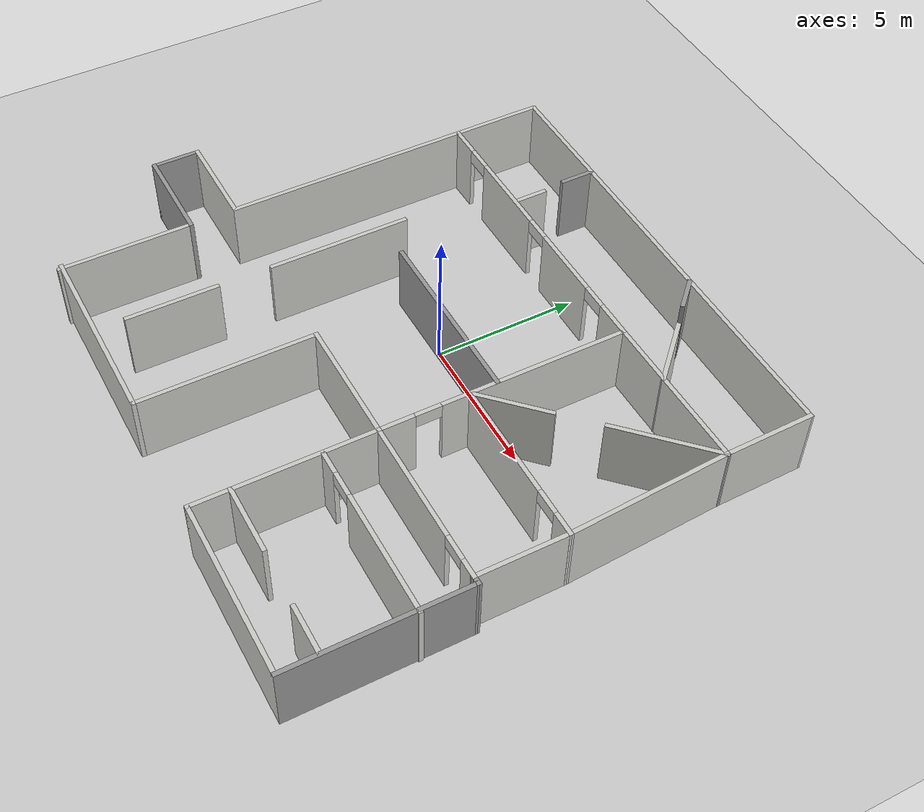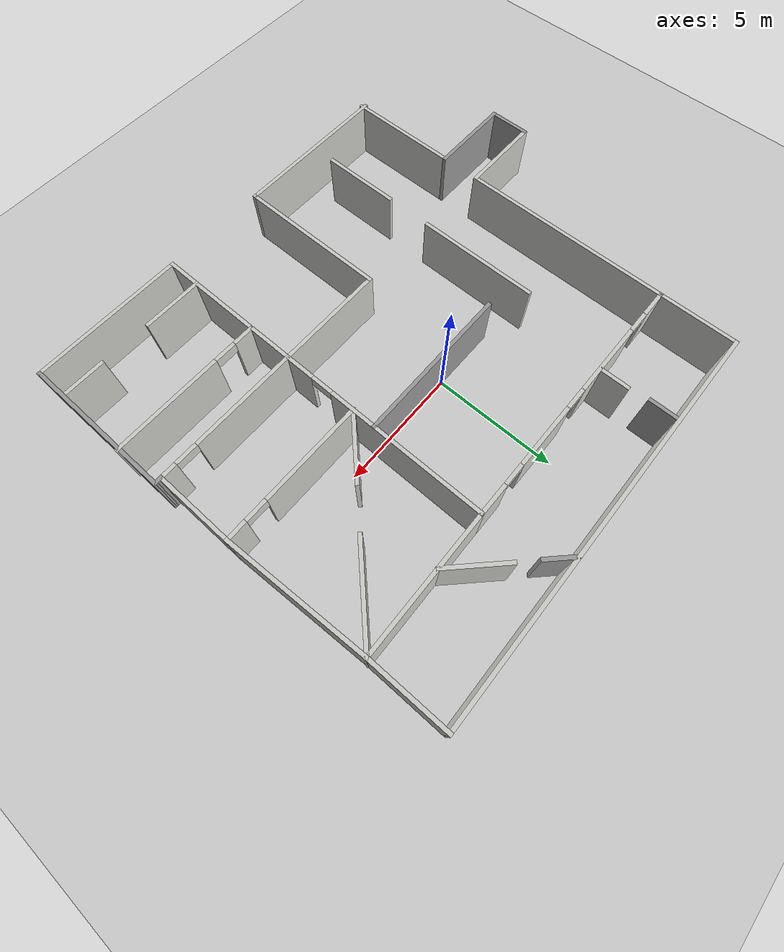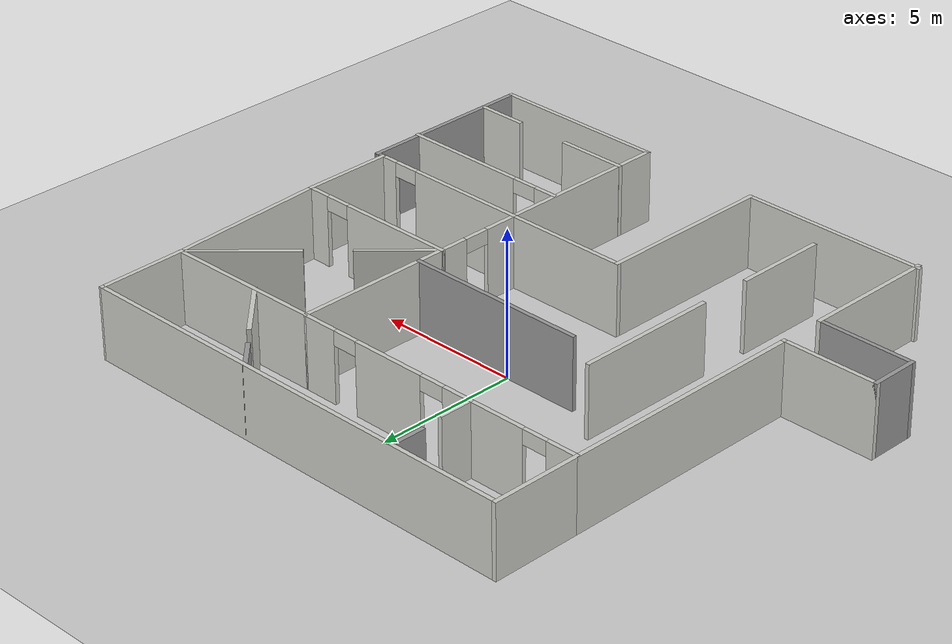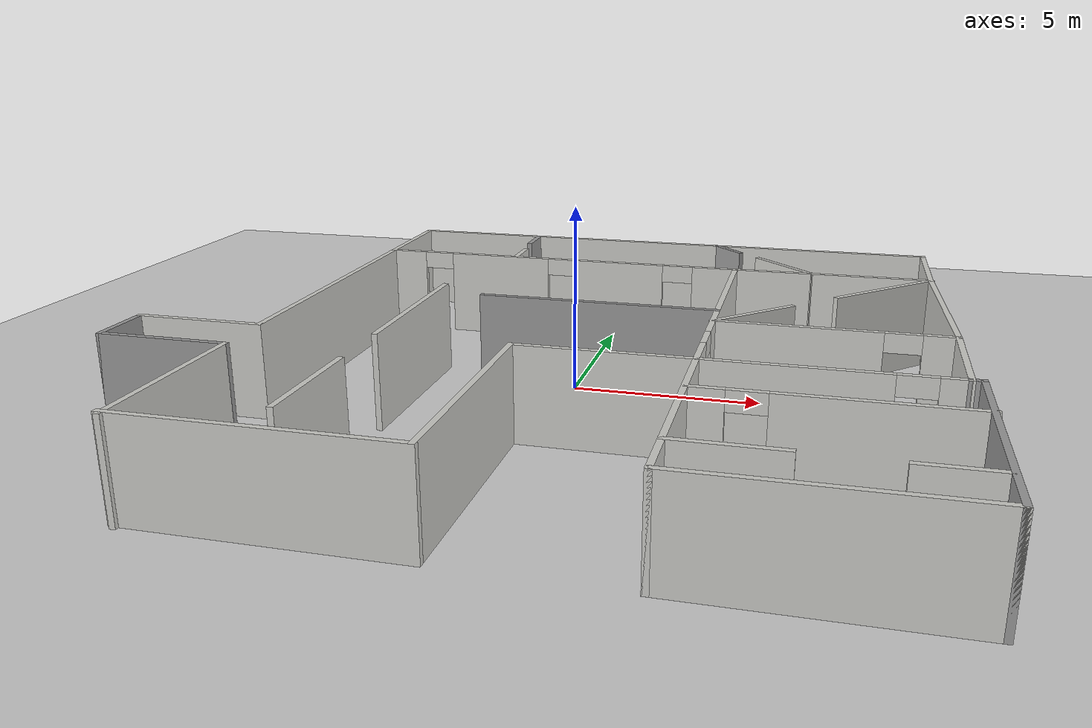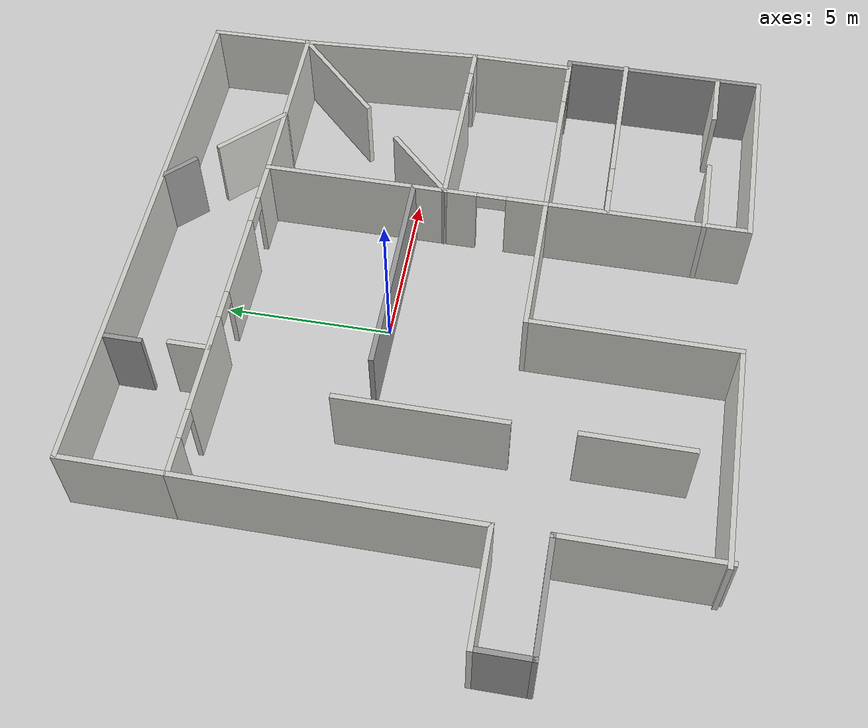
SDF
<sdf version="1.7">
 <world name="default">
  <scene><ambient>0.4 0.4 0.4 1</ambient><background>0.7 0.7 0.7 1</background><shadows>1</shadows></scene>
  <light name="sun" type="directional">
   <pose>0 0 10 0 -0 0</pose>
   <diffuse>0.8 0.8 0.8 1</diffuse>
   <specular>0.2 0.2 0.2 1</specular>
   <attenuation>
    <range>1000</range>
    <constant>0.9</constant>
    <linear>0.01</linear>
    <quadratic>0.001</quadratic>
   </attenuation>
   <direction>-0.5 0.1 -0.9</direction>
   <spot><inner_angle>0</inner_angle><outer_angle>0</outer_angle><falloff>0</falloff></spot>
  </light>
  <model name="ground_plane">
   <static>1</static>
   <link name="link">
    <collision name="collision">
     <geometry><plane><normal>0 0 1</normal><size>100 100</size></plane></geometry>
     <surface>
      <contact><collide_bitmask>65535</collide_bitmask></contact>
      <friction><ode><mu>100</mu><mu2>50</mu2></ode></friction>
     </surface>
    </collision>
    <visual name="visual">
     <cast_shadows>0</cast_shadows>
     <geometry><plane><normal>0 0 1</normal><size>100 100</size></plane></geometry>
     <material>
      <script><uri>file://media/materials/scripts/gazebo.material</uri><name>Gazebo/Grey</name></script>
     </material>
    </visual>
   </link>
  </model>
  <physics type="ode">
   <real_time_update_rate>1000</real_time_update_rate>
   <max_step_size>0.001</max_step_size>
   <real_time_factor>1</real_time_factor>
   <ode>
    <solver>
     <type>quick</type>
     <iters>150</iters>
     <precon_iters>0</precon_iters>
     <sor>1.4</sor>
     <use_dynamic_moi_rescaling>1</use_dynamic_moi_rescaling>
    </solver>
    <constraints>
     <cfm>1e-05</cfm>
     <erp>0.2</erp>
     <contact_max_correcting_vel>2000</contact_max_correcting_vel>
     <contact_surface_layer>0.01</contact_surface_layer>
    </constraints>
   </ode>
  </physics>
  <gravity>0 0 -9.8</gravity>
  <magnetic_field>6e-06 2.3e-05 -4.2e-05</magnetic_field>
  <atmosphere type="adiabatic"/>
  <spherical_coordinates>
   <surface_model>EARTH_WGS84</surface_model>
   <latitude_deg>0</latitude_deg>
   <longitude_deg>0</longitude_deg>
   <elevation>0</elevation>
   <heading_deg>0</heading_deg>
  </spherical_coordinates>
  <model name="simworld1">
   <pose>-0.23853 -1.35626 0 0 -0 0</pose>
   <link name="Wall_11">
    <pose>4.02518 1.54652 0 0 -0 -1.5708</pose>
    <visual name="Wall_11_Visual_0">
     <pose>-1.09189 0 1.25 0 -0 0</pose>
     <geometry><box><size>6.56622 0.15 2.5</size></box></geometry>
     <material>
      <script><uri>file://media/materials/scripts/gazebo.material</uri><name>Gazebo/CeilingTiled</name></script>
      <ambient>1 1 1 1</ambient>
     </material>
     <meta><layer>0</layer></meta>
    </visual>
    <collision name="Wall_11_Collision_0">
     <geometry><box><size>6.56622 0.15 2.5</size></box></geometry>
     <pose>-1.09189 0 1.25 0 -0 0</pose>
    </collision>
    <visual name="Wall_11_Visual_1">
     <pose>3.73311 0 1.25 0 -0 0</pose>
     <geometry><box><size>1.28378 0.15 2.5</size></box></geometry>
     <material>
      <script><uri>file://media/materials/scripts/gazebo.material</uri><name>Gazebo/CeilingTiled</name></script>
      <ambient>1 1 1 1</ambient>
     </material>
     <meta><layer>0</layer></meta>
    </visual>
    <collision name="Wall_11_Collision_1">
     <geometry><box><size>1.28378 0.15 2.5</size></box></geometry>
     <pose>3.73311 0 1.25 0 -0 0</pose>
    </collision>
    <visual name="Wall_11_Visual_2">
     <pose>2.64122 0 2.25 0 -0 0</pose>
     <geometry><box><size>0.9 0.15 0.5</size></box></geometry>
     <material>
      <script><uri>file://media/materials/scripts/gazebo.material</uri><name>Gazebo/CeilingTiled</name></script>
      <ambient>1 1 1 1</ambient>
     </material>
     <meta><layer>0</layer></meta>
    </visual>
    <collision name="Wall_11_Collision_2">
     <geometry><box><size>0.9 0.15 0.5</size></box></geometry>
     <pose>2.64122 0 2.25 0 -0 0</pose>
    </collision>
   </link>
   <link name="Wall_13">
    <collision name="Wall_13_Collision">
     <geometry><box><size>4.5 0.15 2.5</size></box></geometry>
     <pose>0 0 1.25 0 -0 0</pose>
    </collision>
    <visual name="Wall_13_Visual">
     <pose>0 0 1.25 0 -0 0</pose>
     <geometry><box><size>4.5 0.15 2.5</size></box></geometry>
     <material>
      <script><uri>file://media/materials/scripts/gazebo.material</uri><name>Gazebo/CeilingTiled</name></script>
      <ambient>1 1 1 1</ambient>
     </material>
     <meta><layer>0</layer></meta>
    </visual>
    <pose>1.85018 -2.75348 0 0 -0 3.14159</pose>
   </link>
   <link name="Wall_14">
    <collision name="Wall_14_Collision">
     <geometry><box><size>6.25 0.15 2.5</size></box></geometry>
     <pose>0 0 1.25 0 -0 0</pose>
    </collision>
    <visual name="Wall_14_Visual">
     <pose>0 0 1.25 0 -0 0</pose>
     <geometry><box><size>6.25 0.15 2.5</size></box></geometry>
     <material>
      <script><uri>file://media/materials/scripts/gazebo.material</uri><name>Gazebo/CeilingTiled</name></script>
      <ambient>1 1 1 1</ambient>
     </material>
     <meta><layer>0</layer></meta>
    </visual>
    <pose>-0.324822 -5.80348 0 0 -0 -1.5708</pose>
   </link>
   <link name="Wall_15">
    <collision name="Wall_15_Collision">
     <geometry><box><size>6.75 0.15 2.5</size></box></geometry>
     <pose>0 0 1.25 0 -0 0</pose>
    </collision>
    <visual name="Wall_15_Visual">
     <pose>0 0 1.25 0 -0 0</pose>
     <geometry><box><size>6.75 0.15 2.5</size></box></geometry>
     <material>
      <script><uri>file://media/materials/scripts/gazebo.material</uri><name>Gazebo/CeilingTiled</name></script>
      <ambient>1 1 1 1</ambient>
     </material>
     <meta><layer>0</layer></meta>
    </visual>
    <pose>-3.62482 -8.85348 0 0 -0 3.14159</pose>
   </link>
   <link name="Wall_18">
    <collision name="Wall_18_Collision">
     <geometry><box><size>5 0.15 2.5</size></box></geometry>
     <pose>0 0 1.25 0 -0 0</pose>
    </collision>
    <visual name="Wall_18_Visual">
     <pose>0 0 1.25 0 -0 0</pose>
     <geometry><box><size>5 0.15 2.5</size></box></geometry>
     <material>
      <script><uri>file://media/materials/scripts/gazebo.material</uri><name>Gazebo/CeilingTiled</name></script>
      <ambient>1 1 1 1</ambient>
     </material>
     <meta><layer>0</layer></meta>
    </visual>
    <pose>-3.72482 -0.32848 0 0 -0 1.5708</pose>
   </link>
   <link name="Wall_21">
    <collision name="Wall_21_Collision">
     <geometry><box><size>6.5 0.15 2.5</size></box></geometry>
     <pose>0 0 1.25 0 -0 0</pose>
    </collision>
    <visual name="Wall_21_Visual">
     <pose>0 0 1.25 0 -0 0</pose>
     <geometry><box><size>6.5 0.15 2.5</size></box></geometry>
     <material>
      <script><uri>file://media/materials/scripts/gazebo.material</uri><name>Gazebo/Grey</name></script>
      <ambient>1 1 1 1</ambient>
     </material>
     <meta><layer>0</layer></meta>
    </visual>
    <pose>0.835818 1.29652 0 0 -0 0</pose>
   </link>
   <link name="Wall_23">
    <pose>6.94794 0.34391 0 0 -0 0</pose>
    <visual name="Wall_23_Visual_0">
     <pose>-0.890072 0 1.25 0 -0 0</pose>
     <geometry><box><size>4.21986 0.15 2.5</size></box></geometry>
     <material>
      <script><uri>file://media/materials/scripts/gazebo.material</uri><name>Gazebo/CeilingTiled</name></script>
      <ambient>1 1 1 1</ambient>
     </material>
     <meta><layer>0</layer></meta>
    </visual>
    <collision name="Wall_23_Collision_0">
     <geometry><box><size>4.21986 0.15 2.5</size></box></geometry>
     <pose>-0.890072 0 1.25 0 -0 0</pose>
    </collision>
    <visual name="Wall_23_Visual_1">
     <pose>2.55993 0 1.25 0 -0 0</pose>
     <geometry><box><size>0.880144 0.15 2.5</size></box></geometry>
     <material>
      <script><uri>file://media/materials/scripts/gazebo.material</uri><name>Gazebo/CeilingTiled</name></script>
      <ambient>1 1 1 1</ambient>
     </material>
     <meta><layer>0</layer></meta>
    </visual>
    <collision name="Wall_23_Collision_1">
     <geometry><box><size>0.880144 0.15 2.5</size></box></geometry>
     <pose>2.55993 0 1.25 0 -0 0</pose>
    </collision>
    <visual name="Wall_23_Visual_2">
     <pose>1.66986 0 2.25 0 -0 0</pose>
     <geometry><box><size>0.9 0.15 0.5</size></box></geometry>
     <material>
      <script><uri>file://media/materials/scripts/gazebo.material</uri><name>Gazebo/CeilingTiled</name></script>
      <ambient>1 1 1 1</ambient>
     </material>
     <meta><layer>0</layer></meta>
    </visual>
    <collision name="Wall_23_Collision_2">
     <geometry><box><size>0.9 0.15 0.5</size></box></geometry>
     <pose>1.66986 0 2.25 0 -0 0</pose>
    </collision>
   </link>
   <link name="Wall_24">
    <collision name="Wall_24_Collision">
     <geometry><box><size>3.25 0.15 2.5</size></box></geometry>
     <pose>0 0 1.25 0 -0 0</pose>
    </collision>
    <visual name="Wall_24_Visual">
     <pose>0 0 1.25 0 -0 0</pose>
     <geometry><box><size>3.25 0.15 2.5</size></box></geometry>
     <material>
      <script><uri>file://media/materials/scripts/gazebo.material</uri><name>Gazebo/CeilingTiled</name></script>
      <ambient>1 1 1 1</ambient>
     </material>
     <meta><layer>0</layer></meta>
    </visual>
    <pose>9.87294 -1.20609 0 0 -0 -1.5708</pose>
   </link>
   <link name="Wall_25">
    <pose>6.94906 -2.75479 0 0 -0 3.14115</pose>
    <visual name="Wall_25_Visual_0">
     <pose>-2.64457 0 1.25 0 -0 0</pose>
     <geometry><box><size>0.708624 0.15 2.5</size></box></geometry>
     <material>
      <script><uri>file://media/materials/scripts/gazebo.material</uri><name>Gazebo/CeilingTiled</name></script>
      <ambient>1 1 1 1</ambient>
     </material>
     <meta><layer>0</layer></meta>
    </visual>
    <collision name="Wall_25_Collision_0">
     <geometry><box><size>0.708624 0.15 2.5</size></box></geometry>
     <pose>-2.64457 0 1.25 0 -0 0</pose>
    </collision>
    <visual name="Wall_25_Visual_1">
     <pose>0.804312 0 1.25 0 -0 0</pose>
     <geometry><box><size>4.38914 0.15 2.5</size></box></geometry>
     <material>
      <script><uri>file://media/materials/scripts/gazebo.material</uri><name>Gazebo/CeilingTiled</name></script>
      <ambient>1 1 1 1</ambient>
     </material>
     <meta><layer>0</layer></meta>
    </visual>
    <collision name="Wall_25_Collision_1">
     <geometry><box><size>4.38914 0.15 2.5</size></box></geometry>
     <pose>0.804312 0 1.25 0 -0 0</pose>
    </collision>
    <visual name="Wall_25_Visual_2">
     <pose>-1.84026 0 2.25 0 -0 0</pose>
     <geometry><box><size>0.9 0.15 0.5</size></box></geometry>
     <material>
      <script><uri>file://media/materials/scripts/gazebo.material</uri><name>Gazebo/CeilingTiled</name></script>
      <ambient>1 1 1 1</ambient>
     </material>
     <meta><layer>0</layer></meta>
    </visual>
    <collision name="Wall_25_Collision_2">
     <geometry><box><size>0.9 0.15 0.5</size></box></geometry>
     <pose>-1.84026 0 2.25 0 -0 0</pose>
    </collision>
   </link>
   <link name="Wall_26">
    <collision name="Wall_26_Collision">
     <geometry><box><size>6.25 0.15 2.5</size></box></geometry>
     <pose>0 0 1.25 0 -0 0</pose>
    </collision>
    <visual name="Wall_26_Visual">
     <pose>0 0 1.25 0 -0 0</pose>
     <geometry><box><size>6.25 0.15 2.5</size></box></geometry>
     <material>
      <script><uri>file://media/materials/scripts/gazebo.material</uri><name>Gazebo/CeilingTiled</name></script>
      <ambient>1 1 1 1</ambient>
     </material>
     <meta><layer>0</layer></meta>
    </visual>
    <pose>4.02518 -5.80348 0 0 -0 -1.5708</pose>
   </link>
   <link name="Wall_27">
    <collision name="Wall_27_Collision">
     <geometry><box><size>6.25 0.15 2.5</size></box></geometry>
     <pose>0 0 1.25 0 -0 0</pose>
    </collision>
    <visual name="Wall_27_Visual">
     <pose>0 0 1.25 0 -0 0</pose>
     <geometry><box><size>6.25 0.15 2.5</size></box></geometry>
     <material>
      <script><uri>file://media/materials/scripts/gazebo.material</uri><name>Gazebo/CeilingTiled</name></script>
      <ambient>1 1 1 1</ambient>
     </material>
     <meta><layer>0</layer></meta>
    </visual>
    <pose>7.07518 -8.85348 0 0 -0 0</pose>
   </link>
   <link name="Wall_28">
    <collision name="Wall_28_Collision">
     <geometry><box><size>6.25 0.15 2.5</size></box></geometry>
     <pose>0 0 1.25 0 -0 0</pose>
    </collision>
    <visual name="Wall_28_Visual">
     <pose>0 0 1.25 0 -0 0</pose>
     <geometry><box><size>6.25 0.15 2.5</size></box></geometry>
     <material>
      <script><uri>file://media/materials/scripts/gazebo.material</uri><name>Gazebo/Grey</name></script>
      <ambient>1 1 1 1</ambient>
     </material>
     <meta><layer>0</layer></meta>
    </visual>
    <pose>10.1252 -5.80348 0 0 -0 1.5708</pose>
   </link>
   <link name="Wall_29">
    <collision name="Wall_29_Collision">
     <geometry><box><size>0.402248 0.15 2.5</size></box></geometry>
     <pose>0 0 1.25 0 -0 0</pose>
    </collision>
    <visual name="Wall_29_Visual">
     <pose>0 0 1.25 0 -0 0</pose>
     <geometry><box><size>0.402248 0.15 2.5</size></box></geometry>
     <material>
      <script><uri>file://media/materials/scripts/gazebo.material</uri><name>Gazebo/Grey</name></script>
      <ambient>1 1 1 1</ambient>
     </material>
     <meta><layer>0</layer></meta>
    </visual>
    <pose>9.99906 -2.75479 0 0 -0 -3.13125</pose>
   </link>
   <link name="Wall_3">
    <collision name="Wall_3_Collision">
     <geometry><box><size>4.75 0.15 2.5</size></box></geometry>
     <pose>0 0 1.25 0 -0 0</pose>
    </collision>
    <visual name="Wall_3_Visual">
     <pose>0 0 1.25 0 -0 0</pose>
     <geometry><box><size>4.75 0.15 2.5</size></box></geometry>
     <material>
      <script><uri>file://media/materials/scripts/gazebo.material</uri><name>Gazebo/CeilingTiled</name></script>
      <ambient>1 1 1 1</ambient>
     </material>
     <meta><layer>0</layer></meta>
    </visual>
    <pose>-6.82482 -6.65348 0 0 -0 1.5708</pose>
   </link>
   <link name="Wall_33">
    <pose>7.12482 -4.58462 0 0 -0 0</pose>
    <visual name="Wall_33_Visual_0">
     <pose>-2.68766 0 1.25 0 -0 0</pose>
     <geometry><box><size>0.874678 0.15 2.5</size></box></geometry>
     <material>
      <script><uri>file://media/materials/scripts/gazebo.material</uri><name>Gazebo/CeilingTiled</name></script>
      <ambient>1 1 1 1</ambient>
     </material>
     <meta><layer>0</layer></meta>
    </visual>
    <collision name="Wall_33_Collision_0">
     <geometry><box><size>0.874678 0.15 2.5</size></box></geometry>
     <pose>-2.68766 0 1.25 0 -0 0</pose>
    </collision>
    <visual name="Wall_33_Visual_1">
     <pose>0.887339 0 1.25 0 -0 0</pose>
     <geometry><box><size>4.47532 0.15 2.5</size></box></geometry>
     <material>
      <script><uri>file://media/materials/scripts/gazebo.material</uri><name>Gazebo/CeilingTiled</name></script>
      <ambient>1 1 1 1</ambient>
     </material>
     <meta><layer>0</layer></meta>
    </visual>
    <collision name="Wall_33_Collision_1">
     <geometry><box><size>4.47532 0.15 2.5</size></box></geometry>
     <pose>0.887339 0 1.25 0 -0 0</pose>
    </collision>
    <visual name="Wall_33_Visual_2">
     <pose>-1.80032 0 2.25 0 -0 0</pose>
     <geometry><box><size>0.9 0.15 0.5</size></box></geometry>
     <material>
      <script><uri>file://media/materials/scripts/gazebo.material</uri><name>Gazebo/CeilingTiled</name></script>
      <ambient>1 1 1 1</ambient>
     </material>
     <meta><layer>0</layer></meta>
    </visual>
    <collision name="Wall_33_Collision_2">
     <geometry><box><size>0.9 0.15 0.5</size></box></geometry>
     <pose>-1.80032 0 2.25 0 -0 0</pose>
    </collision>
   </link>
   <link name="Wall_36">
    <collision name="Wall_36_Collision">
     <geometry><box><size>5.69876 0.15 2.5</size></box></geometry>
     <pose>0 0 1.25 0 -0 0</pose>
    </collision>
    <visual name="Wall_36_Visual">
     <pose>0 0 1.25 0 -0 0</pose>
     <geometry><box><size>5.69876 0.15 2.5</size></box></geometry>
     <material>
      <script><uri>file://media/materials/scripts/gazebo.material</uri><name>Gazebo/CeilingTiled</name></script>
      <ambient>1 1 1 1</ambient>
     </material>
     <meta><layer>0</layer></meta>
    </visual>
    <pose>6.79946 5.87061 0 0 -0 -3.13291</pose>
   </link>
   <link name="Wall_38">
    <collision name="Wall_38_Collision">
     <geometry><box><size>5.70885 0.15 2.5</size></box></geometry>
     <pose>0 0 1.25 0 -0 0</pose>
    </collision>
    <visual name="Wall_38_Visual">
     <pose>0 0 1.25 0 -0 0</pose>
     <geometry><box><size>5.70885 0.15 2.5</size></box></geometry>
     <material>
      <script><uri>file://media/materials/scripts/gazebo.material</uri><name>Gazebo/CeilingTiled</name></script>
      <ambient>1 1 1 1</ambient>
     </material>
     <meta><layer>0</layer></meta>
    </visual>
    <pose>9.72334 3.1193 0 0 -0 -1.51694</pose>
   </link>
   <link name="Wall_40">
    <collision name="Wall_40_Collision">
     <geometry><box><size>3.25 0.15 2.5</size></box></geometry>
     <pose>0 0 1.25 0 -0 0</pose>
    </collision>
    <visual name="Wall_40_Visual">
     <pose>0 0 1.25 0 -0 0</pose>
     <geometry><box><size>3.25 0.15 2.5</size></box></geometry>
     <material>
      <script><uri>file://media/materials/scripts/gazebo.material</uri><name>Gazebo/CeilingTiled</name></script>
      <ambient>1 1 1 1</ambient>
     </material>
     <meta><layer>0</layer></meta>
    </visual>
    <pose>-6.82482 7.39652 0 0 -0 1.5708</pose>
   </link>
   <link name="Wall_41">
    <collision name="Wall_41_Collision">
     <geometry><box><size>16.5 0.15 2.5</size></box></geometry>
     <pose>0 0 1.25 0 -0 0</pose>
    </collision>
    <visual name="Wall_41_Visual">
     <pose>0 0 1.25 0 -0 0</pose>
     <geometry><box><size>16.5 0.15 2.5</size></box></geometry>
     <material>
      <script><uri>file://media/materials/scripts/gazebo.material</uri><name>Gazebo/CeilingTiled</name></script>
      <ambient>1 1 1 1</ambient>
     </material>
     <meta><layer>0</layer></meta>
    </visual>
    <pose>1.35018 8.94652 0 0 -0 0</pose>
   </link>
   <link name="Wall_42">
    <collision name="Wall_42_Collision">
     <geometry><box><size>3.20221 0.15 2.5</size></box></geometry>
     <pose>0 0 1.25 0 -0 0</pose>
    </collision>
    <visual name="Wall_42_Visual">
     <pose>0 0 1.25 0 -0 0</pose>
     <geometry><box><size>3.20221 0.15 2.5</size></box></geometry>
     <material>
      <script><uri>file://media/materials/scripts/gazebo.material</uri><name>Gazebo/CeilingTiled</name></script>
      <ambient>1 1 1 1</ambient>
     </material>
     <meta><layer>0</layer></meta>
    </visual>
    <pose>9.54946 7.42061 0 0 -0 -1.55489</pose>
   </link>
   <link name="Wall_51">
    <collision name="Wall_51_Collision">
     <geometry><box><size>3.5 0.15 2.5</size></box></geometry>
     <pose>0 0 1.25 0 -0 0</pose>
    </collision>
    <visual name="Wall_51_Visual">
     <pose>0 0 1.25 0 -0 0</pose>
     <geometry><box><size>3.5 0.15 2.5</size></box></geometry>
     <material>
      <script><uri>file://media/materials/scripts/gazebo.material</uri><name>Gazebo/CeilingTiled</name></script>
      <ambient>1 1 1 1</ambient>
     </material>
     <meta><layer>0</layer></meta>
    </visual>
    <pose>-8.49982 -2.75348 0 0 -0 3.14159</pose>
   </link>
   <link name="Wall_52">
    <collision name="Wall_52_Collision">
     <geometry><box><size>1.75 0.15 2.5</size></box></geometry>
     <pose>0 0 1.25 0 -0 0</pose>
    </collision>
    <visual name="Wall_52_Visual">
     <pose>0 0 1.25 0 -0 0</pose>
     <geometry><box><size>1.75 0.15 2.5</size></box></geometry>
     <material>
      <script><uri>file://media/materials/scripts/gazebo.material</uri><name>Gazebo/Grey</name></script>
      <ambient>1 1 1 1</ambient>
     </material>
     <meta><layer>0</layer></meta>
    </visual>
    <pose>-10.1748 -3.55348 0 0 -0 -1.5708</pose>
   </link>
   <link name="Wall_53">
    <collision name="Wall_53_Collision">
     <geometry><box><size>3.5 0.15 2.5</size></box></geometry>
     <pose>0 0 1.25 0 -0 0</pose>
    </collision>
    <visual name="Wall_53_Visual">
     <pose>0 0 1.25 0 -0 0</pose>
     <geometry><box><size>3.5 0.15 2.5</size></box></geometry>
     <material>
      <script><uri>file://media/materials/scripts/gazebo.material</uri><name>Gazebo/Grey</name></script>
      <ambient>1 1 1 1</ambient>
     </material>
     <meta><layer>0</layer></meta>
    </visual>
    <pose>-8.49982 -4.35348 0 0 -0 0</pose>
   </link>
   <link name="Wall_55">
    <collision name="Wall_55_Collision">
     <geometry><box><size>2.5 0.15 2.5</size></box></geometry>
     <pose>0 0 1.25 0 -0 0</pose>
    </collision>
    <visual name="Wall_55_Visual">
     <pose>0 0 1.25 0 -0 0</pose>
     <geometry><box><size>2.5 0.15 2.5</size></box></geometry>
     <material>
      <script><uri>file://media/materials/scripts/gazebo.material</uri><name>Gazebo/CeilingTiled</name></script>
      <ambient>1 1 1 1</ambient>
     </material>
     <meta><layer>0</layer></meta>
    </visual>
    <pose>5.1959 -7.50977 0 0 -0 0</pose>
   </link>
   <link name="Wall_57">
    <collision name="Wall_57_Collision">
     <geometry><box><size>1.75 0.15 2.5</size></box></geometry>
     <pose>0 0 1.25 0 -0 0</pose>
    </collision>
    <visual name="Wall_57_Visual">
     <pose>0 0 1.25 0 -0 0</pose>
     <geometry><box><size>1.75 0.15 2.5</size></box></geometry>
     <material>
      <script><uri>file://media/materials/scripts/gazebo.material</uri><name>Gazebo/CeilingTiled</name></script>
      <ambient>1 1 1 1</ambient>
     </material>
     <meta><layer>0</layer></meta>
    </visual>
    <pose>9.25862 -7.54408 0 0 -0 3.14159</pose>
   </link>
   <link name="Wall_59">
    <collision name="Wall_59_Collision">
     <geometry><box><size>1.25 0.15 2.5</size></box></geometry>
     <pose>0 0 1.25 0 -0 0</pose>
    </collision>
    <visual name="Wall_59_Visual">
     <pose>0 0 1.25 0 -0 0</pose>
     <geometry><box><size>1.25 0.15 2.5</size></box></geometry>
     <material>
      <script><uri>file://media/materials/scripts/gazebo.material</uri><name>Gazebo/Grey</name></script>
      <ambient>1 1 1 1</ambient>
     </material>
     <meta><layer>0</layer></meta>
    </visual>
    <pose>-2.87444 8.37242 0 0 -0 -1.5708</pose>
   </link>
   <link name="Wall_61">
    <collision name="Wall_61_Collision">
     <geometry><box><size>1.25 0.15 2.5</size></box></geometry>
     <pose>0 0 1.25 0 -0 0</pose>
    </collision>
    <visual name="Wall_61_Visual">
     <pose>0 0 1.25 0 -0 0</pose>
     <geometry><box><size>1.25 0.15 2.5</size></box></geometry>
     <material>
      <script><uri>file://media/materials/scripts/gazebo.material</uri><name>Gazebo/CeilingTiled</name></script>
      <ambient>1 1 1 1</ambient>
     </material>
     <meta><layer>0</layer></meta>
    </visual>
    <pose>-2.77153 6.41925 0 0 -0 1.5708</pose>
   </link>
   <link name="Wall_65">
    <collision name="Wall_65_Collision">
     <geometry><box><size>2.5 0.15 2.5</size></box></geometry>
     <pose>0 0 1.25 0 -0 0</pose>
    </collision>
    <visual name="Wall_65_Visual">
     <pose>0 0 1.25 0 -0 0</pose>
     <geometry><box><size>2.5 0.15 2.5</size></box></geometry>
     <material>
      <script><uri>file://media/materials/scripts/gazebo.material</uri><name>Gazebo/CeilingTiled</name></script>
      <ambient>1 1 1 1</ambient>
     </material>
     <meta><layer>0</layer></meta>
    </visual>
    <pose>5.41989 6.7001 0 0 -0 2.35619</pose>
   </link>
   <link name="Wall_67">
    <collision name="Wall_67_Collision">
     <geometry><box><size>1.25 0.15 2.5</size></box></geometry>
     <pose>0 0 1.25 0 -0 0</pose>
    </collision>
    <visual name="Wall_67_Visual">
     <pose>0 0 1.25 0 -0 0</pose>
     <geometry><box><size>1.25 0.15 2.5</size></box></geometry>
     <material>
      <script><uri>file://media/materials/scripts/gazebo.material</uri><name>Gazebo/Grey</name></script>
      <ambient>1 1 1 1</ambient>
     </material>
     <meta><layer>0</layer></meta>
    </visual>
    <pose>3.55218 8.53351 0 0 -0 -0.785398</pose>
   </link>
   <link name="Wall_69">
    <collision name="Wall_69_Collision">
     <geometry><box><size>3.75 0.15 2.5</size></box></geometry>
     <pose>0 0 1.25 0 -0 0</pose>
    </collision>
    <visual name="Wall_69_Visual">
     <pose>0 0 1.25 0 -0 0</pose>
     <geometry><box><size>3.75 0.15 2.5</size></box></geometry>
     <material>
      <script><uri>file://media/materials/scripts/gazebo.material</uri><name>Gazebo/CeilingTiled</name></script>
      <ambient>1 1 1 1</ambient>
     </material>
     <meta><layer>0</layer></meta>
    </visual>
    <pose>8.30094 4.62191 0 0 -0 -2.35619</pose>
   </link>
   <link name="Wall_7">
    <collision name="Wall_7_Collision">
     <geometry><box><size>8.75 0.15 2.5</size></box></geometry>
     <pose>0 0 1.25 0 -0 0</pose>
    </collision>
    <visual name="Wall_7_Visual">
     <pose>0 0 1.25 0 -0 0</pose>
     <geometry><box><size>8.75 0.15 2.5</size></box></geometry>
     <material>
      <script><uri>file://media/materials/scripts/gazebo.material</uri><name>Gazebo/CeilingTiled</name></script>
      <ambient>1 1 1 1</ambient>
     </material>
     <meta><layer>0</layer></meta>
    </visual>
    <pose>-6.82482 1.54652 0 0 -0 1.5708</pose>
   </link>
   <link name="Wall_71">
    <collision name="Wall_71_Collision">
     <geometry><box><size>2.75 0.15 2.5</size></box></geometry>
     <pose>0 0 1.25 0 -0 0</pose>
    </collision>
    <visual name="Wall_71_Visual">
     <pose>0 0 1.25 0 -0 0</pose>
     <geometry><box><size>2.75 0.15 2.5</size></box></geometry>
     <material>
      <script><uri>file://media/materials/scripts/gazebo.material</uri><name>Gazebo/CeilingTiled</name></script>
      <ambient>1 1 1 1</ambient>
     </material>
     <meta><layer>0</layer></meta>
    </visual>
    <pose>4.94218 1.26315 0 0 -0 0.785398</pose>
   </link>
   <link name="Wall_73">
    <collision name="Wall_73_Collision">
     <geometry><box><size>3.25 0.15 2.5</size></box></geometry>
     <pose>0 0 1.25 0 -0 0</pose>
    </collision>
    <visual name="Wall_73_Visual">
     <pose>0 0 1.25 0 -0 0</pose>
     <geometry><box><size>3.25 0.15 2.5</size></box></geometry>
     <material>
      <script><uri>file://media/materials/scripts/gazebo.material</uri><name>Gazebo/CeilingTiled</name></script>
      <ambient>1 1 1 1</ambient>
     </material>
     <meta><layer>0</layer></meta>
    </visual>
    <pose>-3.73207 -6.24675 0 0 -0 -1.5708</pose>
   </link>
   <link name="Wall_9">
    <pose>-1.39982 5.84652 0 0 -0 0</pose>
    <visual name="Wall_9_Visual_0">
     <pose>-4.91299 0 1.25 0 -0 0</pose>
     <geometry><box><size>1.17402 0.15 2.5</size></box></geometry>
     <material>
      <script><uri>file://media/materials/scripts/gazebo.material</uri><name>Gazebo/CeilingTiled</name></script>
      <ambient>1 1 1 1</ambient>
     </material>
     <meta><layer>0</layer></meta>
    </visual>
    <collision name="Wall_9_Collision_0">
     <geometry><box><size>1.17402 0.15 2.5</size></box></geometry>
     <pose>-4.91299 0 1.25 0 -0 0</pose>
    </collision>
    <visual name="Wall_9_Visual_1">
     <pose>-1.86913 0 1.25 0 -0 0</pose>
     <geometry><box><size>3.11371 0.15 2.5</size></box></geometry>
     <material>
      <script><uri>file://media/materials/scripts/gazebo.material</uri><name>Gazebo/CeilingTiled</name></script>
      <ambient>1 1 1 1</ambient>
     </material>
     <meta><layer>0</layer></meta>
    </visual>
    <collision name="Wall_9_Collision_1">
     <geometry><box><size>3.11371 0.15 2.5</size></box></geometry>
     <pose>-1.86913 0 1.25 0 -0 0</pose>
    </collision>
    <visual name="Wall_9_Visual_2">
     <pose>1.9216 0 1.25 0 -0 0</pose>
     <geometry><box><size>2.66774 0.15 2.5</size></box></geometry>
     <material>
      <script><uri>file://media/materials/scripts/gazebo.material</uri><name>Gazebo/CeilingTiled</name></script>
      <ambient>1 1 1 1</ambient>
     </material>
     <meta><layer>0</layer></meta>
    </visual>
    <collision name="Wall_9_Collision_2">
     <geometry><box><size>2.66774 0.15 2.5</size></box></geometry>
     <pose>1.9216 0 1.25 0 -0 0</pose>
    </collision>
    <visual name="Wall_9_Visual_3">
     <pose>4.82773 0 1.25 0 -0 0</pose>
     <geometry><box><size>1.34453 0.15 2.5</size></box></geometry>
     <material>
      <script><uri>file://media/materials/scripts/gazebo.material</uri><name>Gazebo/CeilingTiled</name></script>
      <ambient>1 1 1 1</ambient>
     </material>
     <meta><layer>0</layer></meta>
    </visual>
    <collision name="Wall_9_Collision_3">
     <geometry><box><size>1.34453 0.15 2.5</size></box></geometry>
     <pose>4.82773 0 1.25 0 -0 0</pose>
    </collision>
    <visual name="Wall_9_Visual_4">
     <pose>-3.87598 0 2.25 0 -0 0</pose>
     <geometry><box><size>0.9 0.15 0.5</size></box></geometry>
     <material>
      <script><uri>file://media/materials/scripts/gazebo.material</uri><name>Gazebo/CeilingTiled</name></script>
      <ambient>1 1 1 1</ambient>
     </material>
     <meta><layer>0</layer></meta>
    </visual>
    <collision name="Wall_9_Collision_4">
     <geometry><box><size>0.9 0.15 0.5</size></box></geometry>
     <pose>-3.87598 0 2.25 0 -0 0</pose>
    </collision>
    <visual name="Wall_9_Visual_5">
     <pose>0.137725 0 2.25 0 -0 0</pose>
     <geometry><box><size>0.9 0.15 0.5</size></box></geometry>
     <material>
      <script><uri>file://media/materials/scripts/gazebo.material</uri><name>Gazebo/CeilingTiled</name></script>
      <ambient>1 1 1 1</ambient>
     </material>
     <meta><layer>0</layer></meta>
    </visual>
    <collision name="Wall_9_Collision_5">
     <geometry><box><size>0.9 0.15 0.5</size></box></geometry>
     <pose>0.137725 0 2.25 0 -0 0</pose>
    </collision>
    <visual name="Wall_9_Visual_6">
     <pose>3.70547 0 2.25 0 -0 0</pose>
     <geometry><box><size>0.9 0.15 0.5</size></box></geometry>
     <material>
      <script><uri>file://media/materials/scripts/gazebo.material</uri><name>Gazebo/CeilingTiled</name></script>
      <ambient>1 1 1 1</ambient>
     </material>
     <meta><layer>0</layer></meta>
    </visual>
    <collision name="Wall_9_Collision_6">
     <geometry><box><size>0.9 0.15 0.5</size></box></geometry>
     <pose>3.70547 0 2.25 0 -0 0</pose>
    </collision>
   </link>
   <static>1</static>
  </model>
 </world>
</sdf>
